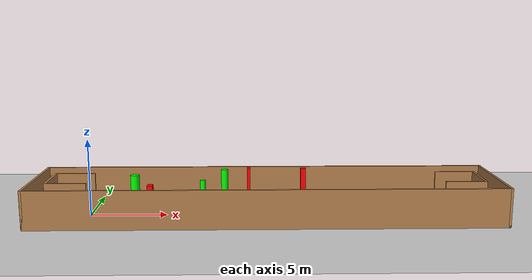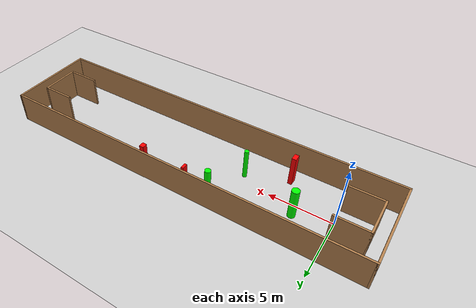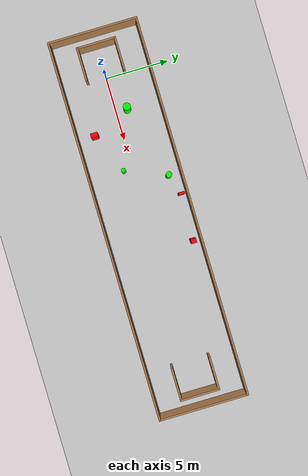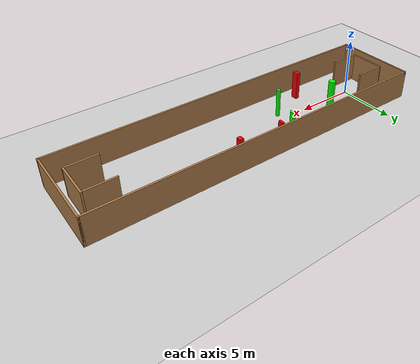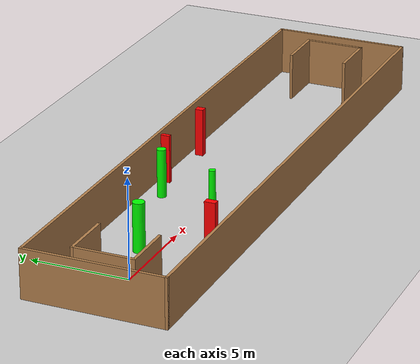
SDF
<sdf version="1.7">
 <world name="default">
  <light name="sun" type="directional">
   <pose>0 0 10 0 -0 0</pose>
   <diffuse>0.8 0.8 0.8 1</diffuse>
   <specular>0.2 0.2 0.2 1</specular>
   <attenuation>
    <range>1000</range>
    <constant>0.9</constant>
    <linear>0.01</linear>
    <quadratic>0.001</quadratic>
   </attenuation>
   <direction>-0.5 0.1 -0.9</direction>
   <spot><inner_angle>0</inner_angle><outer_angle>0</outer_angle><falloff>0</falloff></spot>
  </light>
  <model name="ground_plane">
   <static>1</static>
   <link name="link">
    <collision name="collision">
     <geometry><plane><normal>0 0 1</normal><size>100 100</size></plane></geometry>
     <surface>
      <contact><collide_bitmask>65535</collide_bitmask></contact>
      <friction><ode><mu>100</mu><mu2>50</mu2></ode></friction>
     </surface>
    </collision>
    <visual name="visual">
     <cast_shadows>0</cast_shadows>
     <geometry><plane><normal>0 0 1</normal><size>100 100</size></plane></geometry>
     <material>
      <script><uri>file://media/materials/scripts/gazebo.material</uri><name>Gazebo/Grey</name></script>
     </material>
    </visual>
   </link>
  </model>
  <gravity>0 0 -9.8</gravity>
  <magnetic_field>6e-06 2.3e-05 -4.2e-05</magnetic_field>
  <atmosphere type="adiabatic"/>
  <physics type="ode">
   <max_step_size>0.001</max_step_size>
   <real_time_factor>1</real_time_factor>
   <real_time_update_rate>1000</real_time_update_rate>
  </physics>
  <scene><ambient>0.4 0.4 0.4 1</ambient><background>0.7 0.7 0.7 1</background><shadows>1</shadows></scene>
  <spherical_coordinates>
   <surface_model>EARTH_WGS84</surface_model>
   <latitude_deg>0</latitude_deg>
   <longitude_deg>0</longitude_deg>
   <elevation>0</elevation>
   <heading_deg>0</heading_deg>
  </spherical_coordinates>
  <model name="my_base_walls">
   <link name="Wall_0">
    <collision name="Wall_0_Collision">
     <geometry><box><size>7.15 0.15 2.5</size></box></geometry>
     <pose>0 0 1.25 0 -0 0</pose>
    </collision>
    <visual name="Wall_0_Visual">
     <pose>0 0 1.25 0 -0 0</pose>
     <geometry><box><size>7.15 0.15 2.5</size></box></geometry>
     <material>
      <script><uri>file://media/materials/scripts/gazebo.material</uri><name>Gazebo/Wood</name></script>
      <ambient>1 1 1 1</ambient>
     </material>
     <meta><layer>0</layer></meta>
    </visual>
    <pose>-15 0 0 0 -0 1.5708</pose>
   </link>
   <link name="Wall_10">
    <collision name="Wall_10_Collision">
     <geometry><box><size>2.65 0.15 2.5</size></box></geometry>
     <pose>0 0 1.25 0 -0 0</pose>
    </collision>
    <visual name="Wall_10_Visual">
     <pose>0 0 1.25 0 -0 0</pose>
     <geometry><box><size>2.65 0.15 2.5</size></box></geometry>
     <material>
      <script><uri>file://media/materials/scripts/gazebo.material</uri><name>Gazebo/Wood</name></script>
      <ambient>1 1 1 1</ambient>
     </material>
     <meta><layer>0</layer></meta>
    </visual>
    <pose>-12.75 -1.5 0 0 -0 0</pose>
   </link>
   <link name="Wall_12">
    <collision name="Wall_12_Collision">
     <geometry><box><size>2.65 0.15 2.5</size></box></geometry>
     <pose>0 0 1.25 0 -0 0</pose>
    </collision>
    <visual name="Wall_12_Visual">
     <pose>0 0 1.25 0 -0 0</pose>
     <geometry><box><size>2.65 0.15 2.5</size></box></geometry>
     <material>
      <script><uri>file://media/materials/scripts/gazebo.material</uri><name>Gazebo/Wood</name></script>
      <ambient>1 1 1 1</ambient>
     </material>
     <meta><layer>0</layer></meta>
    </visual>
    <pose>-12.75 1.5 0 0 -0 0</pose>
   </link>
   <link name="Wall_14">
    <collision name="Wall_14_Collision">
     <geometry><box><size>3.15 0.15 2.5</size></box></geometry>
     <pose>0 0 1.25 0 -0 0</pose>
    </collision>
    <visual name="Wall_14_Visual">
     <pose>0 0 1.25 0 -0 0</pose>
     <geometry><box><size>3.15 0.15 2.5</size></box></geometry>
     <material>
      <script><uri>file://media/materials/scripts/gazebo.material</uri><name>Gazebo/Wood</name></script>
      <ambient>1 1 1 1</ambient>
     </material>
     <meta><layer>0</layer></meta>
    </visual>
    <pose>14 0 0 0 -0 -1.5708</pose>
   </link>
   <link name="Wall_15">
    <collision name="Wall_15_Collision">
     <geometry><box><size>2.65 0.15 2.5</size></box></geometry>
     <pose>0 0 1.25 0 -0 0</pose>
    </collision>
    <visual name="Wall_15_Visual">
     <pose>0 0 1.25 0 -0 0</pose>
     <geometry><box><size>2.65 0.15 2.5</size></box></geometry>
     <material>
      <script><uri>file://media/materials/scripts/gazebo.material</uri><name>Gazebo/Wood</name></script>
      <ambient>1 1 1 1</ambient>
     </material>
     <meta><layer>0</layer></meta>
    </visual>
    <pose>12.75 -1.5 0 0 -0 3.14159</pose>
   </link>
   <link name="Wall_17">
    <collision name="Wall_17_Collision">
     <geometry><box><size>2.65 0.15 2.5</size></box></geometry>
     <pose>0 0 1.25 0 -0 0</pose>
    </collision>
    <visual name="Wall_17_Visual">
     <pose>0 0 1.25 0 -0 0</pose>
     <geometry><box><size>2.65 0.15 2.5</size></box></geometry>
     <material>
      <script><uri>file://media/materials/scripts/gazebo.material</uri><name>Gazebo/Wood</name></script>
      <ambient>1 1 1 1</ambient>
     </material>
     <meta><layer>0</layer></meta>
    </visual>
    <pose>12.75 1.5 0 0 -0 3.14159</pose>
   </link>
   <link name="Wall_2">
    <collision name="Wall_2_Collision">
     <geometry><box><size>30.15 0.15 2.5</size></box></geometry>
     <pose>0 0 1.25 0 -0 0</pose>
    </collision>
    <visual name="Wall_2_Visual">
     <pose>0 0 1.25 0 -0 0</pose>
     <geometry><box><size>30.15 0.15 2.5</size></box></geometry>
     <material>
      <script><uri>file://media/materials/scripts/gazebo.material</uri><name>Gazebo/Wood</name></script>
      <ambient>1 1 1 1</ambient>
     </material>
     <meta><layer>0</layer></meta>
    </visual>
    <pose>-0 -3.5 0 0 -0 0</pose>
   </link>
   <link name="Wall_4">
    <collision name="Wall_4_Collision">
     <geometry><box><size>30.15 0.15 2.5</size></box></geometry>
     <pose>0 0 1.25 0 -0 0</pose>
    </collision>
    <visual name="Wall_4_Visual">
     <pose>0 0 1.25 0 -0 0</pose>
     <geometry><box><size>30.15 0.15 2.5</size></box></geometry>
     <material>
      <script><uri>file://media/materials/scripts/gazebo.material</uri><name>Gazebo/Wood</name></script>
      <ambient>1 1 1 1</ambient>
     </material>
     <meta><layer>0</layer></meta>
    </visual>
    <pose>-0 3.5 0 0 -0 0</pose>
   </link>
   <link name="Wall_6">
    <collision name="Wall_6_Collision">
     <geometry><box><size>7.15 0.15 2.5</size></box></geometry>
     <pose>0 0 1.25 0 -0 0</pose>
    </collision>
    <visual name="Wall_6_Visual">
     <pose>0 0 1.25 0 -0 0</pose>
     <geometry><box><size>7.15 0.15 2.5</size></box></geometry>
     <material>
      <script><uri>file://media/materials/scripts/gazebo.material</uri><name>Gazebo/Wood</name></script>
      <ambient>1 1 1 1</ambient>
     </material>
     <meta><layer>0</layer></meta>
    </visual>
    <pose>15 0 0 0 -0 -1.5708</pose>
   </link>
   <link name="Wall_9">
    <collision name="Wall_9_Collision">
     <geometry><box><size>3.15 0.15 2.5</size></box></geometry>
     <pose>0 0 1.25 0 -0 0</pose>
    </collision>
    <visual name="Wall_9_Visual">
     <pose>0 0 1.25 0 -0 0</pose>
     <geometry><box><size>3.15 0.15 2.5</size></box></geometry>
     <material>
      <script><uri>file://media/materials/scripts/gazebo.material</uri><name>Gazebo/Wood</name></script>
      <ambient>1 1 1 1</ambient>
     </material>
     <meta><layer>0</layer></meta>
    </visual>
    <pose>-14 0 0 0 -0 -1.5708</pose>
   </link>
   <static>1</static>
   <pose>11.5 0 0 0 -0 0</pose>
  </model>
  <model name="cylinder1">
   <static>1</static>
   <link name="link">
    <inertial>
     <mass>1</mass>
     <inertia><ixx>0.5</ixx><ixy>0</ixy><ixz>0</ixz><iyy>0.5</iyy><iyz>0</iyz><izz>1</izz></inertia>
    </inertial>
    <collision name="collision">
     <geometry><cylinder><radius>0.2346721742955466</radius><length>2.5</length></cylinder></geometry>
    </collision>
    <visual name="visual">
     <geometry><cylinder><radius>0.2346721742955466</radius><length>2.5</length></cylinder></geometry>
     <material>
      <ambient>0 1 0 1</ambient>
      <diffuse>0 1 0 1</diffuse>
      <specular>0.1 0.1 0.1 1</specular>
      <emissive>0 0 0 0</emissive>
     </material>
    </visual>
   </link>
   <pose>8.699571570074 2.5006257437086132 1.25 0 0 0</pose>
  </model>
  <model name="cylinder2">
   <static>1</static>
   <link name="link">
    <inertial>
     <mass>1</mass>
     <inertia><ixx>0.5</ixx><ixy>0</ixy><ixz>0</ixz><iyy>0.5</iyy><iyz>0</iyz><izz>1</izz></inertia>
    </inertial>
    <collision name="collision">
     <geometry><cylinder><radius>0.17088814240937839</radius><length>2.5</length></cylinder></geometry>
    </collision>
    <visual name="visual">
     <geometry><cylinder><radius>0.17088814240937839</radius><length>2.5</length></cylinder></geometry>
     <material>
      <ambient>0 1 0 1</ambient>
      <diffuse>0 1 0 1</diffuse>
      <specular>0.1 0.1 0.1 1</specular>
      <emissive>0 0 0 0</emissive>
     </material>
    </visual>
   </link>
   <pose>7.408517461206042 -0.7511976506801639 1.25 0 0 0</pose>
  </model>
  <model name="cylinder3">
   <static>1</static>
   <link name="link">
    <inertial>
     <mass>1</mass>
     <inertia><ixx>0.5</ixx><ixy>0</ixy><ixz>0</ixz><iyy>0.5</iyy><iyz>0</iyz><izz>1</izz></inertia>
    </inertial>
    <collision name="collision">
     <geometry><cylinder><radius>0.29583851723410587</radius><length>2.5</length></cylinder></geometry>
    </collision>
    <visual name="visual">
     <geometry><cylinder><radius>0.29583851723410587</radius><length>2.5</length></cylinder></geometry>
     <material>
      <ambient>0 1 0 1</ambient>
      <diffuse>0 1 0 1</diffuse>
      <specular>0.1 0.1 0.1 1</specular>
      <emissive>0 0 0 0</emissive>
     </material>
    </visual>
   </link>
   <pose>2.8161222442043456 0.8807068108676006 1.25 0 0 0</pose>
  </model>
  <model name="box1">
   <static>1</static>
   <link name="link">
    <inertial>
     <mass>1</mass>
     <inertia><ixx>0.083</ixx><ixy>0</ixy><ixz>0</ixz><iyy>0.083</iyy><iyz>0</iyz><izz>0.083</izz></inertia>
    </inertial>
    <collision name="collision">
     <geometry><box><size>0.33700326754720994 0.562009801775019 2.5</size></box></geometry>
    </collision>
    <visual name="visual">
     <geometry><box><size>0.33700326754720994 0.562009801775019 2.5</size></box></geometry>
     <material>
      <ambient>1 0 0 1</ambient>
      <diffuse>1 0 0 1</diffuse>
      <specular>0.1 0.1 0.1 1</specular>
      <emissive>0 0 0 0</emissive>
     </material>
    </visual>
    <sensor name="my_contact" type="contact">
     <contact><collision>box_collision</collision><topic>__default_topic__</topic></contact>
    </sensor>
   </link>
   <pose>4.198472069112912 -2.1175023317943586 1.25 0 0 0</pose>
  </model>
  <model name="box2">
   <static>1</static>
   <link name="link">
    <inertial>
     <mass>1</mass>
     <inertia><ixx>0.083</ixx><ixy>0</ixy><ixz>0</ixz><iyy>0.083</iyy><iyz>0</iyz><izz>0.083</izz></inertia>
    </inertial>
    <collision name="collision">
     <geometry><box><size>0.20860197635344604 0.4554451247833331 2.5</size></box></geometry>
    </collision>
    <visual name="visual">
     <geometry><box><size>0.20860197635344604 0.4554451247833331 2.5</size></box></geometry>
     <material>
      <ambient>1 0 0 1</ambient>
      <diffuse>1 0 0 1</diffuse>
      <specular>0.1 0.1 0.1 1</specular>
      <emissive>0 0 0 0</emissive>
     </material>
    </visual>
    <sensor name="my_contact" type="contact">
     <contact><collision>box_collision</collision><topic>__default_topic__</topic></contact>
    </sensor>
   </link>
   <pose>10.342368960838428 3.029167968088082 1.25 0 0 0</pose>
  </model>
  <model name="box3">
   <static>1</static>
   <link name="link">
    <inertial>
     <mass>1</mass>
     <inertia><ixx>0.083</ixx><ixy>0</ixy><ixz>0</ixz><iyy>0.083</iyy><iyz>0</iyz><izz>0.083</izz></inertia>
    </inertial>
    <collision name="collision">
     <geometry><box><size>0.361768444576504 0.4181250492966096 2.5</size></box></geometry>
    </collision>
    <visual name="visual">
     <geometry><box><size>0.361768444576504 0.4181250492966096 2.5</size></box></geometry>
     <material>
      <ambient>1 0 0 1</ambient>
      <diffuse>1 0 0 1</diffuse>
      <specular>0.1 0.1 0.1 1</specular>
      <emissive>0 0 0 0</emissive>
     </material>
    </visual>
    <sensor name="my_contact" type="contact">
     <contact><collision>box_collision</collision><topic>__default_topic__</topic></contact>
    </sensor>
   </link>
   <pose>14.097448660842474 2.875995481627074 1.25 0 0 0</pose>
  </model>
 </world>
</sdf>
